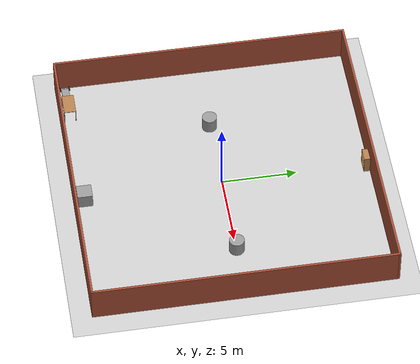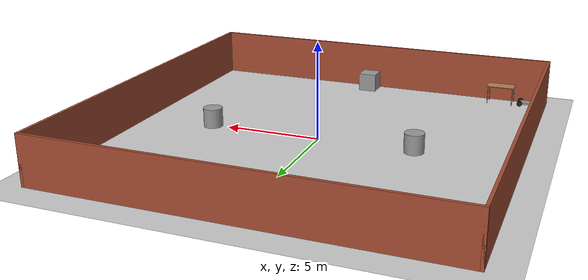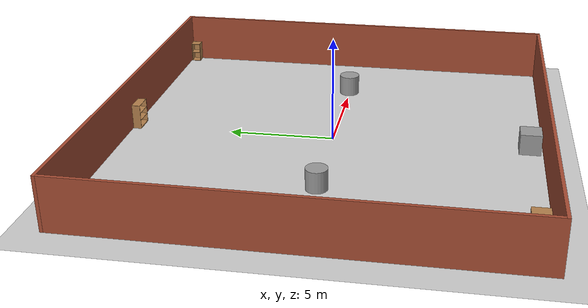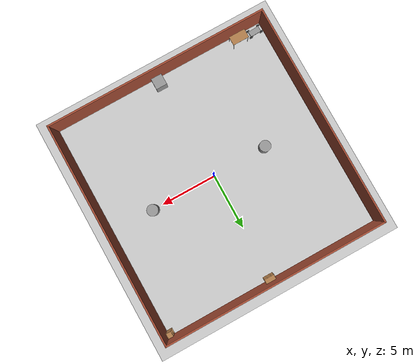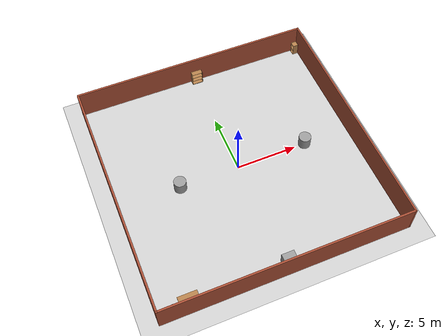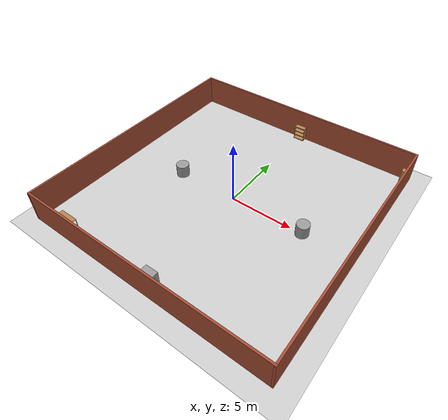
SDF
<sdf version="1.7">
 <world name="default">
  <light name="sun" type="directional">
   <pose>0 0 10 0 -0 0</pose>
   <diffuse>0.8 0.8 0.8 1</diffuse>
   <specular>0.2 0.2 0.2 1</specular>
   <attenuation>
    <range>1000</range>
    <constant>0.9</constant>
    <linear>0.01</linear>
    <quadratic>0.001</quadratic>
   </attenuation>
   <direction>-0.5 0.1 -0.9</direction>
   <spot><inner_angle>0</inner_angle><outer_angle>0</outer_angle><falloff>0</falloff></spot>
  </light>
  <model name="ground_plane">
   <static>1</static>
   <link name="link">
    <collision name="collision">
     <geometry><plane><normal>0 0 1</normal><size>100 100</size></plane></geometry>
     <surface><friction><ode><mu>100</mu><mu2>50</mu2></ode></friction></surface>
    </collision>
    <visual name="visual">
     <cast_shadows>0</cast_shadows>
     <geometry><plane><normal>0 0 1</normal><size>100 100</size></plane></geometry>
     <material>
      <script><uri>file://media/materials/scripts/gazebo.material</uri><name>Gazebo/Grey</name></script>
     </material>
    </visual>
   </link>
  </model>
  <gravity>0 0 -9.8</gravity>
  <magnetic_field>6e-06 2.3e-05 -4.2e-05</magnetic_field>
  <atmosphere type="adiabatic"/>
  <physics type="ode">
   <max_step_size>0.001</max_step_size>
   <real_time_factor>1</real_time_factor>
   <real_time_update_rate>1000</real_time_update_rate>
  </physics>
  <scene><ambient>0.4 0.4 0.4 1</ambient><background>0.7 0.7 0.7 1</background><shadows>1</shadows></scene>
  <spherical_coordinates>
   <surface_model>EARTH_WGS84</surface_model>
   <latitude_deg>0</latitude_deg>
   <longitude_deg>0</longitude_deg>
   <elevation>0</elevation>
   <heading_deg>0</heading_deg>
  </spherical_coordinates>
  <model name="room">
   <pose>-0.090577 0.027604 0 0 -0 0</pose>
   <link name="Wall_1">
    <collision name="Wall_1_Collision">
     <geometry><box><size>20 0.15 2.5</size></box></geometry>
     <pose>0 0 1.25 0 -0 0</pose>
    </collision>
    <visual name="Wall_1_Visual">
     <pose>0 0 1.25 0 -0 0</pose>
     <geometry><box><size>20 0.15 2.5</size></box></geometry>
     <material>
      <script><uri>file://media/materials/scripts/gazebo.material</uri><name>Gazebo/Bricks</name></script>
      <ambient>0.760784 0.662745 0.627451 1</ambient>
     </material>
     <meta><layer>0</layer></meta>
    </visual>
    <pose>0 9.925 0 0 -0 0</pose>
   </link>
   <link name="Wall_3">
    <collision name="Wall_3_Collision">
     <geometry><box><size>20 0.15 2.5</size></box></geometry>
     <pose>0 0 1.25 0 -0 0</pose>
    </collision>
    <visual name="Wall_3_Visual">
     <pose>0 0 1.25 0 -0 0</pose>
     <geometry><box><size>20 0.15 2.5</size></box></geometry>
     <material>
      <script><uri>file://media/materials/scripts/gazebo.material</uri><name>Gazebo/Bricks</name></script>
      <ambient>1 1 1 1</ambient>
     </material>
     <meta><layer>0</layer></meta>
    </visual>
    <pose>-9.925 -0 0 0 -0 -1.5708</pose>
   </link>
   <link name="Wall_4">
    <collision name="Wall_4_Collision">
     <geometry><box><size>20 0.15 2.5</size></box></geometry>
     <pose>0 0 1.25 0 -0 0</pose>
    </collision>
    <visual name="Wall_4_Visual">
     <pose>0 0 1.25 0 -0 0</pose>
     <geometry><box><size>20 0.15 2.5</size></box></geometry>
     <material>
      <script><uri>file://media/materials/scripts/gazebo.material</uri><name>Gazebo/Bricks</name></script>
      <ambient>0.760784 0.662745 0.627451 1</ambient>
     </material>
     <meta><layer>0</layer></meta>
    </visual>
    <pose>0 -9.925 0 0 -0 0</pose>
   </link>
   <link name="Wall_5">
    <collision name="Wall_5_Collision">
     <geometry><box><size>20 0.15 2.5</size></box></geometry>
     <pose>0 0 1.25 0 -0 0</pose>
    </collision>
    <visual name="Wall_5_Visual">
     <pose>0 0 1.25 0 -0 0</pose>
     <geometry><box><size>20 0.15 2.5</size></box></geometry>
     <material>
      <script><uri>file://media/materials/scripts/gazebo.material</uri><name>Gazebo/Bricks</name></script>
      <ambient>1 1 1 1</ambient>
     </material>
     <meta><layer>0</layer></meta>
    </visual>
    <pose>9.925 -0 0 0 -0 1.5708</pose>
   </link>
   <static>1</static>
  </model>
  <model name="bookshelf">
   <static>1</static>
   <link name="link">
    <inertial><mass>1</mass></inertial>
    <collision name="back">
     <pose>0 0.005 0.6 0 -0 0</pose>
     <geometry><box><size>0.9 0.01 1.2</size></box></geometry>
    </collision>
    <visual name="visual1">
     <pose>0 0.005 0.6 0 -0 0</pose>
     <geometry><box><size>0.9 0.01 1.2</size></box></geometry>
     <material>
      <script><uri>file://media/materials/scripts/gazebo.material</uri><name>Gazebo/Wood</name></script>
     </material>
    </visual>
    <collision name="left_side">
     <pose>0.45 -0.195 0.6 0 -0 0</pose>
     <geometry><box><size>0.02 0.4 1.2</size></box></geometry>
    </collision>
    <visual name="visual2">
     <pose>0.45 -0.195 0.6 0 -0 0</pose>
     <geometry><box><size>0.02 0.4 1.2</size></box></geometry>
     <material>
      <script><uri>file://media/materials/scripts/gazebo.material</uri><name>Gazebo/Wood</name></script>
     </material>
    </visual>
    <collision name="right_side">
     <pose>-0.45 -0.195 0.6 0 -0 0</pose>
     <geometry><box><size>0.02 0.4 1.2</size></box></geometry>
    </collision>
    <visual name="visual3">
     <pose>-0.45 -0.195 0.6 0 -0 0</pose>
     <geometry><box><size>0.02 0.4 1.2</size></box></geometry>
     <material>
      <script><uri>file://media/materials/scripts/gazebo.material</uri><name>Gazebo/Wood</name></script>
     </material>
    </visual>
    <collision name="bottom">
     <pose>0 -0.195 0.03 0 -0 0</pose>
     <geometry><box><size>0.88 0.4 0.06</size></box></geometry>
    </collision>
    <visual name="visual4">
     <pose>0 -0.195 0.03 0 -0 0</pose>
     <geometry><box><size>0.88 0.4 0.06</size></box></geometry>
     <material>
      <script><uri>file://media/materials/scripts/gazebo.material</uri><name>Gazebo/Wood</name></script>
     </material>
    </visual>
    <collision name="top">
     <pose>0 -0.195 1.19 0 -0 0</pose>
     <geometry><box><size>0.88 0.4 0.02</size></box></geometry>
    </collision>
    <visual name="visual5">
     <pose>0 -0.195 1.19 0 -0 0</pose>
     <geometry><box><size>0.88 0.4 0.02</size></box></geometry>
     <material>
      <script><uri>file://media/materials/scripts/gazebo.material</uri><name>Gazebo/Wood</name></script>
     </material>
    </visual>
    <collision name="low_shelf">
     <pose>0 -0.195 0.43 0 -0 0</pose>
     <geometry><box><size>0.88 0.4 0.02</size></box></geometry>
    </collision>
    <visual name="visual6">
     <pose>0 -0.195 0.43 0 -0 0</pose>
     <geometry><box><size>0.88 0.4 0.02</size></box></geometry>
     <material>
      <script><uri>file://media/materials/scripts/gazebo.material</uri><name>Gazebo/Wood</name></script>
     </material>
    </visual>
    <collision name="high_shelf">
     <pose>0 -0.195 0.8 0 -0 0</pose>
     <geometry><box><size>0.88 0.4 0.02</size></box></geometry>
    </collision>
    <visual name="visual7">
     <pose>0 -0.195 0.8 0 -0 0</pose>
     <geometry><box><size>0.88 0.4 0.02</size></box></geometry>
     <material>
      <script><uri>file://media/materials/scripts/gazebo.material</uri><name>Gazebo/Wood</name></script>
     </material>
    </visual>
   </link>
   <pose>0.150862 9.85516 0 0 -0 0</pose>
  </model>
  <model name="cabinet">
   <static>1</static>
   <link name="cabinet_bottom_plate">
    <inertial>
     <pose>0 0 -1 0 -0 0</pose>
     <inertia><ixx>2.05</ixx><ixy>0</ixy><ixz>0</ixz><iyy>2.05</iyy><iyz>0</iyz><izz>2.05</izz></inertia>
     <mass>25</mass>
    </inertial>
    <collision name="cabinet_bottom_plate_geom">
     <pose>0 0 0.01 0 -0 0</pose>
     <geometry><box><size>0.45 0.45 0.02</size></box></geometry>
    </collision>
    <visual name="cabinet_bottom_plate_geom_visual">
     <pose>0 0 0.01 0 -0 0</pose>
     <geometry><box><size>0.45 0.45 0.02</size></box></geometry>
     <material>
      <script><uri>file://media/materials/scripts/gazebo.material</uri><name>Gazebo/Wood</name></script>
     </material>
    </visual>
    <collision name="cabinet_bottom_plate_geom_cabinet_back_plate">
     <pose>0.235 0 0.51 0 -0 0</pose>
     <geometry><box><size>0.02 0.45 1.02</size></box></geometry>
    </collision>
    <visual name="cabinet_bottom_plate_geom_cabinet_back_plate_visual">
     <pose>0.235 0 0.51 0 -0 0</pose>
     <geometry><box><size>0.02 0.45 1.02</size></box></geometry>
     <material>
      <script><uri>file://media/materials/scripts/gazebo.material</uri><name>Gazebo/Wood</name></script>
     </material>
    </visual>
    <collision name="cabinet_bottom_plate_geom_cabinet_left_plate">
     <pose>0 0.235 0.51 0 -0 0</pose>
     <geometry><box><size>0.45 0.02 1.02</size></box></geometry>
    </collision>
    <visual name="cabinet_bottom_plate_geom_cabinet_left_plate_visual">
     <pose>0 0.235 0.51 0 -0 0</pose>
     <geometry><box><size>0.45 0.02 1.02</size></box></geometry>
     <material>
      <script><uri>file://media/materials/scripts/gazebo.material</uri><name>Gazebo/Wood</name></script>
     </material>
    </visual>
    <collision name="cabinet_bottom_plate_geom_cabinet_middle_plate">
     <pose>0 0 0.51 0 -0 0</pose>
     <geometry><box><size>0.45 0.45 0.02</size></box></geometry>
    </collision>
    <visual name="cabinet_bottom_plate_geom_cabinet_middle_plate_visual">
     <pose>0 0 0.51 0 -0 0</pose>
     <geometry><box><size>0.45 0.45 0.02</size></box></geometry>
     <material>
      <script><uri>file://media/materials/scripts/gazebo.material</uri><name>Gazebo/Wood</name></script>
     </material>
    </visual>
    <collision name="cabinet_bottom_plate_geom_cabinet_right_plate">
     <pose>0 -0.235 0.51 0 -0 0</pose>
     <geometry><box><size>0.45 0.02 1.02</size></box></geometry>
    </collision>
    <visual name="cabinet_bottom_plate_geom_cabinet_right_plate_visual">
     <pose>0 -0.235 0.51 0 -0 0</pose>
     <geometry><box><size>0.45 0.02 1.02</size></box></geometry>
     <material>
      <script><uri>file://media/materials/scripts/gazebo.material</uri><name>Gazebo/Wood</name></script>
     </material>
    </visual>
    <collision name="cabinet_bottom_plate_geom_cabinet_top_plate">
     <pose>0 0 1.01 0 -0 0</pose>
     <geometry><box><size>0.45 0.45 0.02</size></box></geometry>
    </collision>
    <visual name="cabinet_bottom_plate_geom_cabinet_top_plate_visual">
     <pose>0 0 1.01 0 -0 0</pose>
     <geometry><box><size>0.45 0.45 0.02</size></box></geometry>
     <material>
      <script><uri>file://media/materials/scripts/gazebo.material</uri><name>Gazebo/Wood</name></script>
     </material>
    </visual>
   </link>
   <pose>9.49063 9.60566 0 0 -0 0</pose>
  </model>
  <model name="cart_rigid_suspension">
   <link name="chassis">
    <pose>0 0 0.15 0 -0 0</pose>
    <inertial>
     <pose>0.1 0 0 0 -0 0</pose>
     <mass>10</mass>
     <inertia>
      <ixx>0.216667</ixx>
      <iyy>0.841667</iyy>
      <izz>1.04167</izz>
      <ixy>0</ixy>
      <ixz>0</ixz>
      <iyz>0</iyz>
     </inertia>
    </inertial>
    <collision name="collision"><geometry><box><size>1 0.5 0.1</size></box></geometry></collision>
    <visual name="visual">
     <geometry><box><size>1 0.5 0.1</size></box></geometry>
     <material>
      <script><uri>file://media/materials/scripts/gazebo.material</uri><name>Gazebo/Grey</name></script>
     </material>
    </visual>
   </link>
   <link name="wheel_front_left">
    <pose>0.5 0.298 0.15 -1.5708 0 0</pose>
    <inertial>
     <mass>0.5</mass>
     <inertia>
      <ixx>0.00307917</ixx>
      <iyy>0.00307917</iyy>
      <izz>0.005625</izz>
      <ixy>0</ixy>
      <ixz>0</ixz>
      <iyz>0</iyz>
     </inertia>
    </inertial>
    <collision name="collision">
     <geometry><cylinder><radius>0.15</radius><length>0.08</length></cylinder></geometry>
    </collision>
    <visual name="visual">
     <geometry><cylinder><radius>0.15</radius><length>0.08</length></cylinder></geometry>
     <material>
      <script><uri>file://media/materials/scripts/gazebo.material</uri><name>Gazebo/Black</name></script>
     </material>
    </visual>
   </link>
   <joint name="wheel_front_left_spin" type="revolute">
    <parent>chassis</parent>
    <child>wheel_front_left</child>
    <axis>
     <xyz>0 0 1</xyz>
     <limit><lower>-1e+16</lower><upper>1e+16</upper></limit>
     <dynamics><spring_reference>0</spring_reference><spring_stiffness>0</spring_stiffness></dynamics>
    </axis>
   </joint>
   <link name="wheel_front_right">
    <pose>0.5 -0.298 0.15 -1.5708 0 0</pose>
    <inertial>
     <mass>0.5</mass>
     <inertia>
      <ixx>0.00307917</ixx>
      <iyy>0.00307917</iyy>
      <izz>0.005625</izz>
      <ixy>0</ixy>
      <ixz>0</ixz>
      <iyz>0</iyz>
     </inertia>
    </inertial>
    <collision name="collision">
     <geometry><cylinder><radius>0.15</radius><length>0.08</length></cylinder></geometry>
    </collision>
    <visual name="visual">
     <geometry><cylinder><radius>0.15</radius><length>0.08</length></cylinder></geometry>
     <material>
      <script><uri>file://media/materials/scripts/gazebo.material</uri><name>Gazebo/Black</name></script>
     </material>
    </visual>
   </link>
   <joint name="wheel_front_right_spin" type="revolute">
    <parent>chassis</parent>
    <child>wheel_front_right</child>
    <axis>
     <xyz>0 0 1</xyz>
     <limit><lower>-1e+16</lower><upper>1e+16</upper></limit>
     <dynamics><spring_reference>0</spring_reference><spring_stiffness>0</spring_stiffness></dynamics>
    </axis>
   </joint>
   <link name="wheel_rear_left">
    <pose>-0.5 0.298 0.15 -1.5708 0 0</pose>
    <inertial>
     <mass>0.5</mass>
     <inertia>
      <ixx>0.00307917</ixx>
      <iyy>0.00307917</iyy>
      <izz>0.005625</izz>
      <ixy>0</ixy>
      <ixz>0</ixz>
      <iyz>0</iyz>
     </inertia>
    </inertial>
    <collision name="collision">
     <geometry><cylinder><radius>0.15</radius><length>0.08</length></cylinder></geometry>
    </collision>
    <visual name="visual">
     <geometry><cylinder><radius>0.15</radius><length>0.08</length></cylinder></geometry>
     <material>
      <script><uri>file://media/materials/scripts/gazebo.material</uri><name>Gazebo/Black</name></script>
     </material>
    </visual>
   </link>
   <joint name="wheel_rear_left_spin" type="revolute">
    <parent>chassis</parent>
    <child>wheel_rear_left</child>
    <axis>
     <xyz>0 0 1</xyz>
     <limit><lower>-1e+16</lower><upper>1e+16</upper></limit>
     <dynamics><spring_reference>0</spring_reference><spring_stiffness>0</spring_stiffness></dynamics>
    </axis>
   </joint>
   <link name="wheel_rear_right">
    <pose>-0.5 -0.298 0.15 -1.5708 0 0</pose>
    <inertial>
     <mass>0.5</mass>
     <inertia>
      <ixx>0.00307917</ixx>
      <iyy>0.00307917</iyy>
      <izz>0.005625</izz>
      <ixy>0</ixy>
      <ixz>0</ixz>
      <iyz>0</iyz>
     </inertia>
    </inertial>
    <collision name="collision">
     <geometry><cylinder><radius>0.15</radius><length>0.08</length></cylinder></geometry>
    </collision>
    <visual name="visual">
     <geometry><cylinder><radius>0.15</radius><length>0.08</length></cylinder></geometry>
     <material>
      <script><uri>file://media/materials/scripts/gazebo.material</uri><name>Gazebo/Black</name></script>
     </material>
    </visual>
   </link>
   <joint name="wheel_rear_right_spin" type="revolute">
    <parent>chassis</parent>
    <child>wheel_rear_right</child>
    <axis>
     <xyz>0 0 1</xyz>
     <limit><lower>-1e+16</lower><upper>1e+16</upper></limit>
     <dynamics><spring_reference>0</spring_reference><spring_stiffness>0</spring_stiffness></dynamics>
    </axis>
   </joint>
   <pose>-9.1984 -9.29192 0 0 -0 0.033664</pose>
  </model>
  <model name="table">
   <static>1</static>
   <link name="link">
    <collision name="surface">
     <pose>0 0 1 0 -0 0</pose>
     <geometry><box><size>1.5 0.8 0.03</size></box></geometry>
     <surface><friction><ode><mu>0.6</mu><mu2>0.6</mu2></ode></friction></surface>
    </collision>
    <visual name="visual1">
     <pose>0 0 1 0 -0 0</pose>
     <geometry><box><size>1.5 0.8 0.03</size></box></geometry>
     <material>
      <script><uri>file://media/materials/scripts/gazebo.material</uri><name>Gazebo/Wood</name></script>
     </material>
    </visual>
    <collision name="front_left_leg">
     <pose>0.68 0.38 0.5 0 -0 0</pose>
     <geometry><cylinder><radius>0.02</radius><length>1</length></cylinder></geometry>
    </collision>
    <visual name="front_left_leg">
     <pose>0.68 0.38 0.5 0 -0 0</pose>
     <geometry><cylinder><radius>0.02</radius><length>1</length></cylinder></geometry>
     <material>
      <script><uri>file://media/materials/scripts/gazebo.material</uri><name>Gazebo/Grey</name></script>
     </material>
    </visual>
    <collision name="front_right_leg">
     <pose>0.68 -0.38 0.5 0 -0 0</pose>
     <geometry><cylinder><radius>0.02</radius><length>1</length></cylinder></geometry>
    </collision>
    <visual name="front_right_leg">
     <pose>0.68 -0.38 0.5 0 -0 0</pose>
     <geometry><cylinder><radius>0.02</radius><length>1</length></cylinder></geometry>
     <material>
      <script><uri>file://media/materials/scripts/gazebo.material</uri><name>Gazebo/Grey</name></script>
     </material>
    </visual>
    <collision name="back_right_leg">
     <pose>-0.68 -0.38 0.5 0 -0 0</pose>
     <geometry><cylinder><radius>0.02</radius><length>1</length></cylinder></geometry>
    </collision>
    <visual name="back_right_leg">
     <pose>-0.68 -0.38 0.5 0 -0 0</pose>
     <geometry><cylinder><radius>0.02</radius><length>1</length></cylinder></geometry>
     <material>
      <script><uri>file://media/materials/scripts/gazebo.material</uri><name>Gazebo/Grey</name></script>
     </material>
    </visual>
    <collision name="back_left_leg">
     <pose>-0.68 0.38 0.5 0 -0 0</pose>
     <geometry><cylinder><radius>0.02</radius><length>1</length></cylinder></geometry>
    </collision>
    <visual name="back_left_leg">
     <pose>-0.68 0.38 0.5 0 -0 0</pose>
     <geometry><cylinder><radius>0.02</radius><length>1</length></cylinder></geometry>
     <material>
      <script><uri>file://media/materials/scripts/gazebo.material</uri><name>Gazebo/Grey</name></script>
     </material>
    </visual>
   </link>
   <pose>-7.58031 -9.2668 0 0 -0 0</pose>
  </model>
  <model name="unit_box">
   <pose>0.216156 -9.21209 0.499995 0 1e-05 0</pose>
   <link name="link">
    <inertial>
     <mass>1</mass>
     <inertia>
      <ixx>0.166667</ixx>
      <ixy>0</ixy>
      <ixz>0</ixz>
      <iyy>0.166667</iyy>
      <iyz>0</iyz>
      <izz>0.166667</izz>
     </inertia>
    </inertial>
    <collision name="collision"><geometry><box><size>1 1 1</size></box></geometry></collision>
    <visual name="visual">
     <geometry><box><size>1 1 1</size></box></geometry>
     <material>
      <script><name>Gazebo/Grey</name><uri>file://media/materials/scripts/gazebo.material</uri></script>
     </material>
    </visual>
   </link>
  </model>
  <model name="unit_cylinder">
   <pose>-4.92644 -0.068312 0.499993 -3e-06 -4e-06 -0</pose>
   <link name="link">
    <inertial>
     <mass>1</mass>
     <inertia><ixx>0.145833</ixx><ixy>0</ixy><ixz>0</ixz><iyy>0.145833</iyy><iyz>0</iyz><izz>0.125</izz></inertia>
    </inertial>
    <collision name="collision">
     <geometry><cylinder><radius>0.5</radius><length>1</length></cylinder></geometry>
    </collision>
    <visual name="visual">
     <geometry><cylinder><radius>0.5</radius><length>1</length></cylinder></geometry>
     <material>
      <script><name>Gazebo/Grey</name><uri>file://media/materials/scripts/gazebo.material</uri></script>
     </material>
    </visual>
   </link>
  </model>
  <model name="unit_cylinder_0">
   <pose>5.87715 0.03623 0.499997 3e-06 4e-06 -0</pose>
   <link name="link">
    <inertial>
     <mass>1</mass>
     <inertia><ixx>0.145833</ixx><ixy>0</ixy><ixz>0</ixz><iyy>0.145833</iyy><iyz>0</iyz><izz>0.125</izz></inertia>
    </inertial>
    <collision name="collision">
     <geometry><cylinder><radius>0.5</radius><length>1</length></cylinder></geometry>
    </collision>
    <visual name="visual">
     <geometry><cylinder><radius>0.5</radius><length>1</length></cylinder></geometry>
     <material>
      <script><name>Gazebo/Grey</name><uri>file://media/materials/scripts/gazebo.material</uri></script>
     </material>
    </visual>
   </link>
  </model>
 </world>
</sdf>
